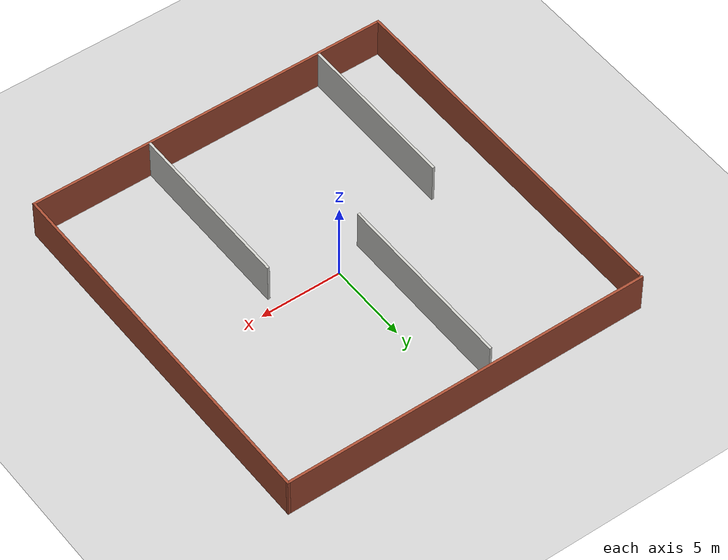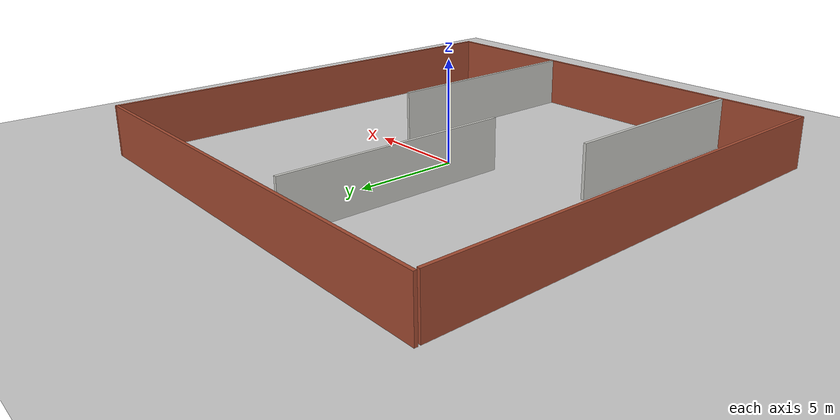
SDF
<sdf version="1.7">
 <world name="default">
  <light name="sun" type="directional">
   <pose>0 0 10 0 -0 0</pose>
   <diffuse>0.8 0.8 0.8 1</diffuse>
   <specular>0.2 0.2 0.2 1</specular>
   <attenuation>
    <range>1000</range>
    <constant>0.9</constant>
    <linear>0.01</linear>
    <quadratic>0.001</quadratic>
   </attenuation>
   <direction>-0.5 0.1 -0.9</direction>
   <spot><inner_angle>0</inner_angle><outer_angle>0</outer_angle><falloff>0</falloff></spot>
  </light>
  <model name="ground_plane">
   <static>1</static>
   <link name="link">
    <collision name="collision">
     <geometry><plane><normal>0 0 1</normal><size>100 100</size></plane></geometry>
     <surface>
      <contact><collide_bitmask>65535</collide_bitmask></contact>
      <friction><ode><mu>100</mu><mu2>50</mu2></ode></friction>
     </surface>
    </collision>
    <visual name="visual">
     <cast_shadows>0</cast_shadows>
     <geometry><plane><normal>0 0 1</normal><size>100 100</size></plane></geometry>
     <material>
      <script><uri>file://media/materials/scripts/gazebo.material</uri><name>Gazebo/Grey</name></script>
     </material>
    </visual>
   </link>
  </model>
  <gravity>0 0 -9.8</gravity>
  <magnetic_field>6e-06 2.3e-05 -4.2e-05</magnetic_field>
  <atmosphere type="adiabatic"/>
  <physics type="ode">
   <max_step_size>0.001</max_step_size>
   <real_time_factor>1</real_time_factor>
   <real_time_update_rate>1000</real_time_update_rate>
  </physics>
  <scene><ambient>0.4 0.4 0.4 1</ambient><background>0.7 0.7 0.7 1</background><shadows>1</shadows></scene>
  <spherical_coordinates>
   <surface_model>EARTH_WGS84</surface_model>
   <latitude_deg>0</latitude_deg>
   <longitude_deg>0</longitude_deg>
   <elevation>0</elevation>
   <heading_deg>0</heading_deg>
  </spherical_coordinates>
  <model name="Four_Quadrant_Walls">
   <pose>0.078206 -0.255157 0 0 -0 0</pose>
   <link name="Wall_10">
    <collision name="Wall_10_Collision">
     <geometry><box><size>22.5 0.15 2.5</size></box></geometry>
     <pose>0 0 1.25 0 -0 0</pose>
    </collision>
    <visual name="Wall_10_Visual">
     <pose>0 0 1.25 0 -0 0</pose>
     <geometry><box><size>22.5 0.15 2.5</size></box></geometry>
     <material>
      <script><uri>file://media/materials/scripts/gazebo.material</uri><name>Gazebo/Bricks</name></script>
      <ambient>1 1 1 1</ambient>
     </material>
     <meta><layer>0</layer></meta>
    </visual>
    <pose>-0 11.3 0 0 -0 3.14159</pose>
   </link>
   <link name="Wall_6">
    <collision name="Wall_6_Collision">
     <geometry><box><size>22.5 0.15 2.5</size></box></geometry>
     <pose>0 0 1.25 0 -0 0</pose>
    </collision>
    <visual name="Wall_6_Visual">
     <pose>0 0 1.25 0 -0 0</pose>
     <geometry><box><size>22.5 0.15 2.5</size></box></geometry>
     <material>
      <script><uri>file://media/materials/scripts/gazebo.material</uri><name>Gazebo/Bricks</name></script>
      <ambient>1 1 1 1</ambient>
     </material>
     <meta><layer>0</layer></meta>
    </visual>
    <pose>-11.175 -0.125 0 0 -0 -1.5708</pose>
   </link>
   <link name="Wall_8">
    <collision name="Wall_8_Collision">
     <geometry><box><size>22.5 0.15 2.5</size></box></geometry>
     <pose>0 0 1.25 0 -0 0</pose>
    </collision>
    <visual name="Wall_8_Visual">
     <pose>0 0 1.25 0 -0 0</pose>
     <geometry><box><size>22.5 0.15 2.5</size></box></geometry>
     <material>
      <script><uri>file://media/materials/scripts/gazebo.material</uri><name>Gazebo/Bricks</name></script>
      <ambient>1 1 1 1</ambient>
     </material>
     <meta><layer>0</layer></meta>
    </visual>
    <pose>-0 -11.3 0 0 -0 0</pose>
   </link>
   <link name="Wall_9">
    <collision name="Wall_9_Collision">
     <geometry><box><size>22.75 0.15 2.5</size></box></geometry>
     <pose>0 0 1.25 0 -0 0</pose>
    </collision>
    <visual name="Wall_9_Visual">
     <pose>0 0 1.25 0 -0 0</pose>
     <geometry><box><size>22.75 0.15 2.5</size></box></geometry>
     <material>
      <script><uri>file://media/materials/scripts/gazebo.material</uri><name>Gazebo/Bricks</name></script>
      <ambient>1 1 1 1</ambient>
     </material>
     <meta><layer>0</layer></meta>
    </visual>
    <pose>11.175 0 0 0 -0 1.5708</pose>
   </link>
   <static>1</static>
  </model>
  <model name="3_walls_four_q">
   <pose>-1.5369 -0.641176 0 0 -0 0</pose>
   <link name="Wall_2">
    <collision name="Wall_2_Collision">
     <geometry><box><size>10.25 0.15 2.5</size></box></geometry>
     <pose>0 0 1.25 0 -0 0</pose>
    </collision>
    <visual name="Wall_2_Visual">
     <pose>0 0 1.25 0 -0 0</pose>
     <geometry><box><size>10.25 0.15 2.5</size></box></geometry>
     <material>
      <script><uri>file://media/materials/scripts/gazebo.material</uri><name>Gazebo/CeilingTiled</name></script>
      <ambient>1 1 1 1</ambient>
     </material>
     <meta><layer>0</layer></meta>
    </visual>
    <pose>-5.51525 -5.72884 0 0 -0 1.5708</pose>
   </link>
   <link name="Wall_4">
    <collision name="Wall_4_Collision">
     <geometry><box><size>11.25 0.15 2.5</size></box></geometry>
     <pose>0 0 1.25 0 -0 0</pose>
    </collision>
    <visual name="Wall_4_Visual">
     <pose>0 0 1.25 0 -0 0</pose>
     <geometry><box><size>11.25 0.15 2.5</size></box></geometry>
     <material>
      <script><uri>file://media/materials/scripts/gazebo.material</uri><name>Gazebo/CeilingTiled</name></script>
      <ambient>1 1 1 1</ambient>
     </material>
     <meta><layer>0</layer></meta>
    </visual>
    <pose>-0.424362 5.24232 0 0 -0 -1.5708</pose>
   </link>
   <link name="Wall_7">
    <collision name="Wall_7_Collision">
     <geometry><box><size>10.75 0.15 2.5</size></box></geometry>
     <pose>0 0 1.25 0 -0 0</pose>
    </collision>
    <visual name="Wall_7_Visual">
     <pose>0 0 1.25 0 -0 0</pose>
     <geometry><box><size>10.75 0.15 2.5</size></box></geometry>
     <material>
      <script><uri>file://media/materials/scripts/gazebo.material</uri><name>Gazebo/CeilingTiled</name></script>
      <ambient>1 1 1 1</ambient>
     </material>
     <meta><layer>0</layer></meta>
    </visual>
    <pose>5.51525 -5.49232 0 0 -0 -1.5708</pose>
   </link>
   <static>1</static>
  </model>
 </world>
</sdf>
